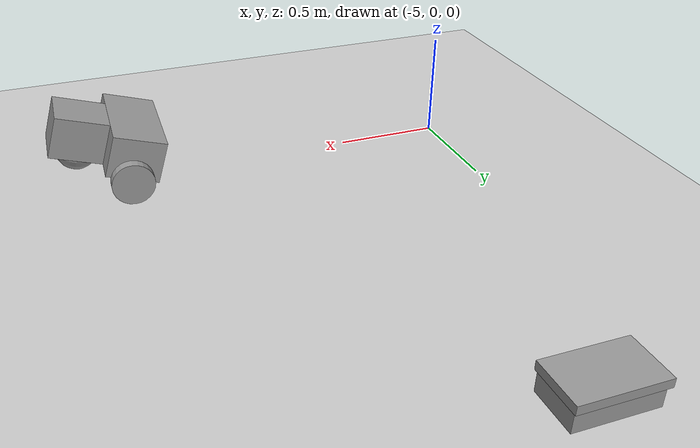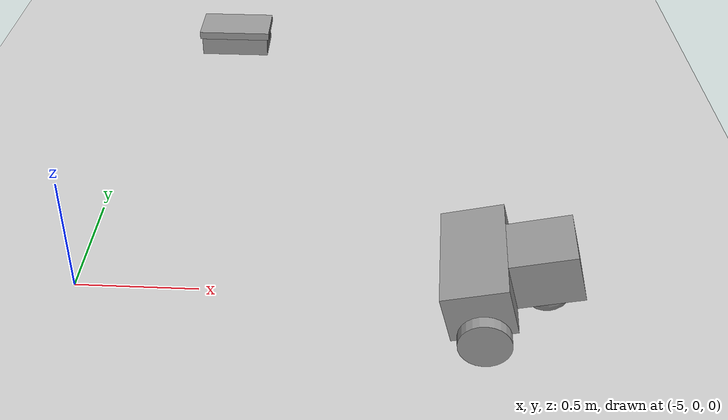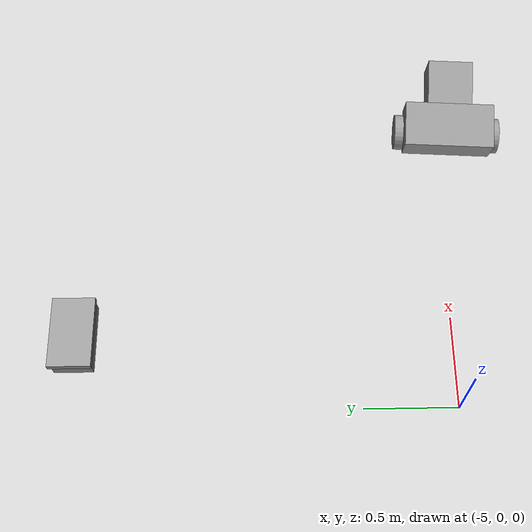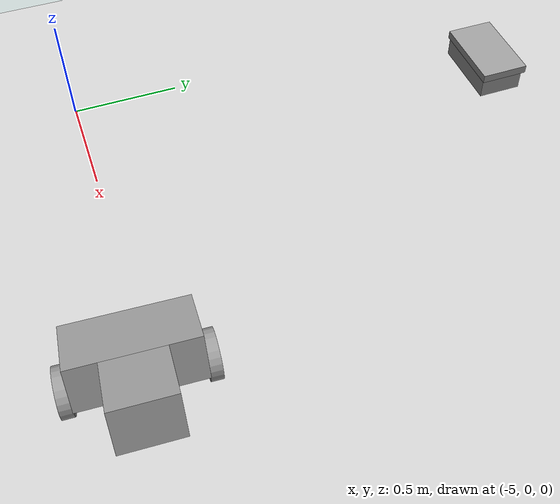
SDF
<sdf version="1.6">
 <world name="default">
  <model name="ground_plane">
   <static>1</static>
   <link name="link">
    <collision name="collision">
     <geometry><plane><normal>0 0 1</normal><size>100 100</size></plane></geometry>
     <surface><friction><ode><mu>100</mu><mu2>50</mu2></ode></friction></surface>
    </collision>
    <visual name="visual">
     <cast_shadows>0</cast_shadows>
     <geometry><plane><normal>0 0 1</normal><size>100 100</size></plane></geometry>
     <material>
      <script><uri>file://media/materials/scripts/gazebo.material</uri><name>Gazebo/Grey</name></script>
     </material>
    </visual>
   </link>
  </model>
  <model name="MattBot">
   <link name="link_10">
    <pose>-0.0975 0.2775 -0.04 1.5707 -0 0</pose>
    <inertial>
     <mass>1</mass>
     <inertia><ixx>0.145833</ixx><ixy>0</ixy><ixz>0</ixz><iyy>0.145833</iyy><iyz>0</iyz><izz>0.125</izz></inertia>
    </inertial>
    <visual name="visual">
     <geometry><cylinder><radius>0.1</radius><length>0.05</length></cylinder></geometry>
     <material>
      <lighting>1</lighting>
      <script><uri>file://media/materials/scripts/gazebo.material</uri><name>Gazebo/Grey</name></script>
      <shader type="pixel"><normal_map>__default__</normal_map></shader>
      <ambient>0.3 0.3 0.3 1</ambient>
      <diffuse>0.7 0.7 0.7 1</diffuse>
      <specular>0.01 0.01 0.01 1</specular>
      <emissive>0 0 0 1</emissive>
     </material>
    </visual>
    <collision name="collision">
     <geometry><cylinder><radius>0.1</radius><length>0.05</length></cylinder></geometry>
     <surface>
      <friction>
       <ode><mu>1</mu><mu2>1</mu2><fdir1>0 0 0</fdir1><slip1>0</slip1><slip2>0</slip2></ode>
       <torsional>
        <coefficient>1</coefficient>
        <patch_radius>0</patch_radius>
        <surface_radius>0</surface_radius>
        <use_patch_radius>1</use_patch_radius>
        <ode><slip>0</slip></ode>
       </torsional>
      </friction>
      <bounce><restitution_coefficient>0</restitution_coefficient><threshold>1e+06</threshold></bounce>
      <contact>
       <collide_without_contact>0</collide_without_contact>
       <collide_without_contact_bitmask>1</collide_without_contact_bitmask>
       <collide_bitmask>1</collide_bitmask>
       <ode>
        <soft_cfm>0</soft_cfm>
        <soft_erp>0.2</soft_erp>
        <kp>1e+13</kp>
        <kd>1</kd>
        <max_vel>0.01</max_vel>
        <min_depth>0</min_depth>
       </ode>
       <bullet>
        <split_impulse>1</split_impulse>
        <split_impulse_penetration_threshold>-0.01</split_impulse_penetration_threshold>
        <soft_cfm>0</soft_cfm>
        <soft_erp>0.2</soft_erp>
        <kp>1e+13</kp>
        <kd>1</kd>
       </bullet>
      </contact>
     </surface>
    </collision>
   </link>
   <link name="link_10_clone">
    <pose>-0.0975 -0.2725 -0.04 1.5707 -0 0</pose>
    <inertial>
     <mass>1</mass>
     <inertia><ixx>0.145833</ixx><ixy>0</ixy><ixz>0</ixz><iyy>0.145833</iyy><iyz>0</iyz><izz>0.125</izz></inertia>
    </inertial>
    <visual name="visual">
     <geometry><cylinder><radius>0.1</radius><length>0.05</length></cylinder></geometry>
     <material>
      <lighting>1</lighting>
      <script><uri>file://media/materials/scripts/gazebo.material</uri><name>Gazebo/Grey</name></script>
      <shader type="pixel"><normal_map>__default__</normal_map></shader>
      <ambient>0.3 0.3 0.3 1</ambient>
      <diffuse>0.7 0.7 0.7 1</diffuse>
      <specular>0.01 0.01 0.01 1</specular>
      <emissive>0 0 0 1</emissive>
     </material>
    </visual>
    <collision name="collision">
     <geometry><cylinder><radius>0.1</radius><length>0.05</length></cylinder></geometry>
     <surface>
      <friction>
       <ode><mu>1</mu><mu2>1</mu2><fdir1>0 0 0</fdir1><slip1>0</slip1><slip2>0</slip2></ode>
       <torsional>
        <coefficient>1</coefficient>
        <patch_radius>0</patch_radius>
        <surface_radius>0</surface_radius>
        <use_patch_radius>1</use_patch_radius>
        <ode><slip>0</slip></ode>
       </torsional>
      </friction>
      <bounce><restitution_coefficient>0</restitution_coefficient><threshold>1e+06</threshold></bounce>
      <contact>
       <collide_without_contact>0</collide_without_contact>
       <collide_without_contact_bitmask>1</collide_without_contact_bitmask>
       <collide_bitmask>1</collide_bitmask>
       <ode>
        <soft_cfm>0</soft_cfm>
        <soft_erp>0.2</soft_erp>
        <kp>1e+13</kp>
        <kd>1</kd>
        <max_vel>0.01</max_vel>
        <min_depth>0</min_depth>
       </ode>
       <bullet>
        <split_impulse>1</split_impulse>
        <split_impulse_penetration_threshold>-0.01</split_impulse_penetration_threshold>
        <soft_cfm>0</soft_cfm>
        <soft_erp>0.2</soft_erp>
        <kp>1e+13</kp>
        <kd>1</kd>
       </bullet>
      </contact>
     </surface>
    </collision>
   </link>
   <link name="link_6">
    <pose>-0.0975 0.0025 0.06 0 -0 0</pose>
    <inertial>
     <mass>1</mass>
     <inertia>
      <ixx>0.166667</ixx>
      <ixy>0</ixy>
      <ixz>0</ixz>
      <iyy>0.166667</iyy>
      <iyz>0</iyz>
      <izz>0.166667</izz>
     </inertia>
    </inertial>
    <visual name="visual">
     <geometry><box><size>0.25 0.5 0.2</size></box></geometry>
     <material>
      <lighting>1</lighting>
      <script><uri>file://media/materials/scripts/gazebo.material</uri><name>Gazebo/Grey</name></script>
      <shader type="pixel"><normal_map>__default__</normal_map></shader>
      <ambient>0.3 0.3 0.3 1</ambient>
      <diffuse>0.7 0.7 0.7 1</diffuse>
      <specular>0.01 0.01 0.01 1</specular>
      <emissive>0 0 0 1</emissive>
     </material>
    </visual>
    <collision name="collision">
     <geometry><box><size>0.25 0.5 0.2</size></box></geometry>
     <surface>
      <friction>
       <ode><mu>1</mu><mu2>1</mu2><fdir1>0 0 0</fdir1><slip1>0</slip1><slip2>0</slip2></ode>
       <torsional>
        <coefficient>1</coefficient>
        <patch_radius>0</patch_radius>
        <surface_radius>0</surface_radius>
        <use_patch_radius>1</use_patch_radius>
        <ode><slip>0</slip></ode>
       </torsional>
      </friction>
      <bounce><restitution_coefficient>0</restitution_coefficient><threshold>1e+06</threshold></bounce>
      <contact>
       <collide_without_contact>0</collide_without_contact>
       <collide_without_contact_bitmask>1</collide_without_contact_bitmask>
       <collide_bitmask>1</collide_bitmask>
       <ode>
        <soft_cfm>0</soft_cfm>
        <soft_erp>0.2</soft_erp>
        <kp>1e+13</kp>
        <kd>1</kd>
        <max_vel>0.01</max_vel>
        <min_depth>0</min_depth>
       </ode>
       <bullet>
        <split_impulse>1</split_impulse>
        <split_impulse_penetration_threshold>-0.01</split_impulse_penetration_threshold>
        <soft_cfm>0</soft_cfm>
        <soft_erp>0.2</soft_erp>
        <kp>1e+13</kp>
        <kd>1</kd>
       </bullet>
      </contact>
     </surface>
    </collision>
   </link>
   <link name="link_7">
    <pose>0.1525 0.0025 0.06 0 -0 0</pose>
    <inertial>
     <mass>1</mass>
     <inertia>
      <ixx>0.166667</ixx>
      <ixy>0</ixy>
      <ixz>0</ixz>
      <iyy>0.166667</iyy>
      <iyz>0</iyz>
      <izz>0.166667</izz>
     </inertia>
    </inertial>
    <visual name="visual">
     <geometry><box><size>0.25 0.25 0.2</size></box></geometry>
     <material>
      <lighting>1</lighting>
      <script><uri>file://media/materials/scripts/gazebo.material</uri><name>Gazebo/Grey</name></script>
      <shader type="pixel"><normal_map>__default__</normal_map></shader>
      <ambient>0.3 0.3 0.3 1</ambient>
      <diffuse>0.7 0.7 0.7 1</diffuse>
      <specular>0.01 0.01 0.01 1</specular>
      <emissive>0 0 0 1</emissive>
     </material>
    </visual>
    <collision name="collision">
     <geometry><box><size>0.25 0.25 0.2</size></box></geometry>
     <surface>
      <friction>
       <ode><mu>1</mu><mu2>1</mu2><fdir1>0 0 0</fdir1><slip1>0</slip1><slip2>0</slip2></ode>
       <torsional>
        <coefficient>1</coefficient>
        <patch_radius>0</patch_radius>
        <surface_radius>0</surface_radius>
        <use_patch_radius>1</use_patch_radius>
        <ode><slip>0</slip></ode>
       </torsional>
      </friction>
      <bounce><restitution_coefficient>0</restitution_coefficient><threshold>1e+06</threshold></bounce>
      <contact>
       <collide_without_contact>0</collide_without_contact>
       <collide_without_contact_bitmask>1</collide_without_contact_bitmask>
       <collide_bitmask>1</collide_bitmask>
       <ode>
        <soft_cfm>0</soft_cfm>
        <soft_erp>0.2</soft_erp>
        <kp>1e+13</kp>
        <kd>1</kd>
        <max_vel>0.01</max_vel>
        <min_depth>0</min_depth>
       </ode>
       <bullet>
        <split_impulse>1</split_impulse>
        <split_impulse_penetration_threshold>-0.01</split_impulse_penetration_threshold>
        <soft_cfm>0</soft_cfm>
        <soft_erp>0.2</soft_erp>
        <kp>1e+13</kp>
        <kd>1</kd>
       </bullet>
      </contact>
     </surface>
    </collision>
   </link>
   <link name="link_9">
    <pose>0.14 -0.01 -0.04 0 -0 0</pose>
    <inertial>
     <mass>1</mass>
     <inertia><ixx>0.1</ixx><ixy>0</ixy><ixz>0</ixz><iyy>0.1</iyy><iyz>0</iyz><izz>0.1</izz></inertia>
    </inertial>
    <visual name="visual">
     <geometry><sphere><radius>0.1</radius></sphere></geometry>
     <material>
      <lighting>1</lighting>
      <script><uri>file://media/materials/scripts/gazebo.material</uri><name>Gazebo/Grey</name></script>
      <shader type="pixel"><normal_map>__default__</normal_map></shader>
      <ambient>0.3 0.3 0.3 1</ambient>
      <diffuse>0.7 0.7 0.7 1</diffuse>
      <specular>0.01 0.01 0.01 1</specular>
      <emissive>0 0 0 1</emissive>
     </material>
    </visual>
    <collision name="collision">
     <geometry><sphere><radius>0.1</radius></sphere></geometry>
     <surface>
      <friction>
       <ode><mu>1</mu><mu2>1</mu2><fdir1>0 0 0</fdir1><slip1>0</slip1><slip2>0</slip2></ode>
       <torsional>
        <coefficient>1</coefficient>
        <patch_radius>0</patch_radius>
        <surface_radius>0</surface_radius>
        <use_patch_radius>1</use_patch_radius>
        <ode><slip>0</slip></ode>
       </torsional>
      </friction>
      <bounce><restitution_coefficient>0</restitution_coefficient><threshold>1e+06</threshold></bounce>
      <contact>
       <collide_without_contact>0</collide_without_contact>
       <collide_without_contact_bitmask>1</collide_without_contact_bitmask>
       <collide_bitmask>1</collide_bitmask>
       <ode>
        <soft_cfm>0</soft_cfm>
        <soft_erp>0.2</soft_erp>
        <kp>1e+13</kp>
        <kd>1</kd>
        <max_vel>0.01</max_vel>
        <min_depth>0</min_depth>
       </ode>
       <bullet>
        <split_impulse>1</split_impulse>
        <split_impulse_penetration_threshold>-0.01</split_impulse_penetration_threshold>
        <soft_cfm>0</soft_cfm>
        <soft_erp>0.2</soft_erp>
        <kp>1e+13</kp>
        <kd>1</kd>
       </bullet>
      </contact>
     </surface>
    </collision>
   </link>
   <joint name="link_10_JOINT_10" type="revolute">
    <parent>link_6</parent>
    <child>link_10</child>
    <axis>
     <xyz>0 0 1</xyz>
     <use_parent_model_frame>0</use_parent_model_frame>
     <limit>
      <lower>-1.79769e+308</lower>
      <upper>1.79769e+308</upper>
      <effort>-1</effort>
      <velocity>-1</velocity>
     </limit>
     <dynamics>
      <spring_reference>0</spring_reference>
      <spring_stiffness>0</spring_stiffness>
      <damping>0</damping>
     </dynamics>
    </axis>
    <physics>
     <ode><limit><cfm>0</cfm><erp>0.2</erp></limit><suspension><cfm>0</cfm><erp>0.2</erp></suspension></ode>
    </physics>
   </joint>
   <joint name="link_6_JOINT_11" type="revolute">
    <parent>link_6</parent>
    <child>link_10_clone</child>
    <axis>
     <xyz>0 0 1</xyz>
     <use_parent_model_frame>0</use_parent_model_frame>
     <limit>
      <lower>-1.79769e+308</lower>
      <upper>1.79769e+308</upper>
      <effort>-1</effort>
      <velocity>-1</velocity>
     </limit>
     <dynamics>
      <spring_reference>0</spring_reference>
      <spring_stiffness>0</spring_stiffness>
      <damping>0</damping>
     </dynamics>
    </axis>
    <physics>
     <ode><limit><cfm>0</cfm><erp>0.2</erp></limit><suspension><cfm>0</cfm><erp>0.2</erp></suspension></ode>
    </physics>
   </joint>
   <joint name="link_6_JOINT_7" type="fixed">
    <parent>link_6</parent>
    <child>link_7</child>
    <physics>
     <ode><limit><cfm>0</cfm><erp>0.2</erp></limit><suspension><cfm>0</cfm><erp>0.2</erp></suspension></ode>
    </physics>
   </joint>
   <joint name="link_7_JOINT_12" type="ball">
    <parent>link_7</parent>
    <child>link_9</child>
    <physics>
     <ode><limit><cfm>0</cfm><erp>0.2</erp></limit><suspension><cfm>0</cfm><erp>0.2</erp></suspension></ode>
    </physics>
   </joint>
   <static>0</static>
   <pose>-3.30759 -0.06452 0.165189 -4e-06 -0.277568 -0.062696</pose>
  </model>
  <model name="shoebox">
   <link name="link_0">
    <pose>0 -0.00025 0.0625 0 -0 0</pose>
    <inertial>
     <mass>1</mass>
     <inertia>
      <ixx>0.166667</ixx>
      <ixy>0</ixy>
      <ixz>0</ixz>
      <iyy>0.166667</iyy>
      <iyz>0</iyz>
      <izz>0.166667</izz>
     </inertia>
    </inertial>
    <visual name="visual">
     <geometry><box><size>0.36 0.21 0.135</size></box></geometry>
     <material>
      <lighting>1</lighting>
      <script><uri>file://media/materials/scripts/gazebo.material</uri><name>Gazebo/Grey</name></script>
      <shader type="pixel"><normal_map>__default__</normal_map></shader>
      <ambient>0.3 0.3 0.3 1</ambient>
      <diffuse>0.7 0.7 0.7 1</diffuse>
      <specular>0.01 0.01 0.01 1</specular>
      <emissive>0 0 0 1</emissive>
     </material>
    </visual>
    <collision name="collision">
     <geometry><box><size>0.36 0.21 0.135</size></box></geometry>
     <surface>
      <friction>
       <ode><mu>1</mu><mu2>1</mu2><fdir1>0 0 0</fdir1><slip1>0</slip1><slip2>0</slip2></ode>
       <torsional>
        <coefficient>1</coefficient>
        <patch_radius>0</patch_radius>
        <surface_radius>0</surface_radius>
        <use_patch_radius>1</use_patch_radius>
        <ode><slip>0</slip></ode>
       </torsional>
      </friction>
      <bounce><restitution_coefficient>0</restitution_coefficient><threshold>1e+06</threshold></bounce>
      <contact>
       <collide_without_contact>0</collide_without_contact>
       <collide_without_contact_bitmask>1</collide_without_contact_bitmask>
       <collide_bitmask>1</collide_bitmask>
       <ode>
        <soft_cfm>0</soft_cfm>
        <soft_erp>0.2</soft_erp>
        <kp>1e+13</kp>
        <kd>1</kd>
        <max_vel>0.01</max_vel>
        <min_depth>0</min_depth>
       </ode>
       <bullet>
        <split_impulse>1</split_impulse>
        <split_impulse_penetration_threshold>-0.01</split_impulse_penetration_threshold>
        <soft_cfm>0</soft_cfm>
        <soft_erp>0.2</soft_erp>
        <kp>1e+13</kp>
        <kd>1</kd>
       </bullet>
      </contact>
     </surface>
    </collision>
   </link>
   <link name="link_1">
    <pose>0 0.00525 0.1125 0 -0 0</pose>
    <inertial>
     <mass>1</mass>
     <inertia>
      <ixx>0.166667</ixx>
      <ixy>0</ixy>
      <ixz>0</ixz>
      <iyy>0.166667</iyy>
      <iyz>0</iyz>
      <izz>0.166667</izz>
     </inertia>
    </inertial>
    <visual name="visual">
     <geometry><box><size>0.38 0.23 0.04</size></box></geometry>
     <material>
      <lighting>1</lighting>
      <script><uri>file://media/materials/scripts/gazebo.material</uri><name>Gazebo/Grey</name></script>
      <shader type="pixel"><normal_map>__default__</normal_map></shader>
      <ambient>0.3 0.3 0.3 1</ambient>
      <diffuse>0.7 0.7 0.7 1</diffuse>
      <specular>0.01 0.01 0.01 1</specular>
      <emissive>0 0 0 1</emissive>
     </material>
    </visual>
    <collision name="collision">
     <geometry><box><size>0.38 0.23 0.04</size></box></geometry>
     <surface>
      <friction>
       <ode><mu>1</mu><mu2>1</mu2><fdir1>0 0 0</fdir1><slip1>0</slip1><slip2>0</slip2></ode>
       <torsional>
        <coefficient>1</coefficient>
        <patch_radius>0</patch_radius>
        <surface_radius>0</surface_radius>
        <use_patch_radius>1</use_patch_radius>
        <ode><slip>0</slip></ode>
       </torsional>
      </friction>
      <bounce><restitution_coefficient>0</restitution_coefficient><threshold>1e+06</threshold></bounce>
      <contact>
       <collide_without_contact>0</collide_without_contact>
       <collide_without_contact_bitmask>1</collide_without_contact_bitmask>
       <collide_bitmask>1</collide_bitmask>
       <ode>
        <soft_cfm>0</soft_cfm>
        <soft_erp>0.2</soft_erp>
        <kp>1e+13</kp>
        <kd>1</kd>
        <max_vel>0.01</max_vel>
        <min_depth>0</min_depth>
       </ode>
       <bullet>
        <split_impulse>1</split_impulse>
        <split_impulse_penetration_threshold>-0.01</split_impulse_penetration_threshold>
        <soft_cfm>0</soft_cfm>
        <soft_erp>0.2</soft_erp>
        <kp>1e+13</kp>
        <kd>1</kd>
       </bullet>
      </contact>
     </surface>
    </collision>
   </link>
   <joint name="link_0_JOINT_1" type="fixed">
    <parent>link_0</parent>
    <child>link_1</child>
    <physics>
     <ode><limit><cfm>0</cfm><erp>0.2</erp></limit><suspension><cfm>0</cfm><erp>0.2</erp></suspension></ode>
    </physics>
   </joint>
   <static>1</static>
   <pose>-4.59327 2.02129 0 0 -0 0</pose>
  </model>
 </world>
</sdf>
